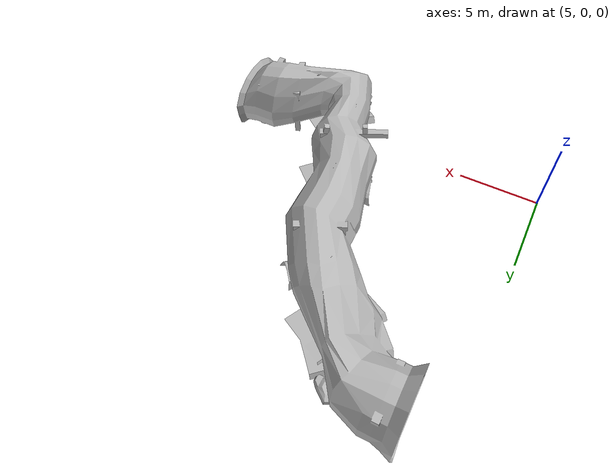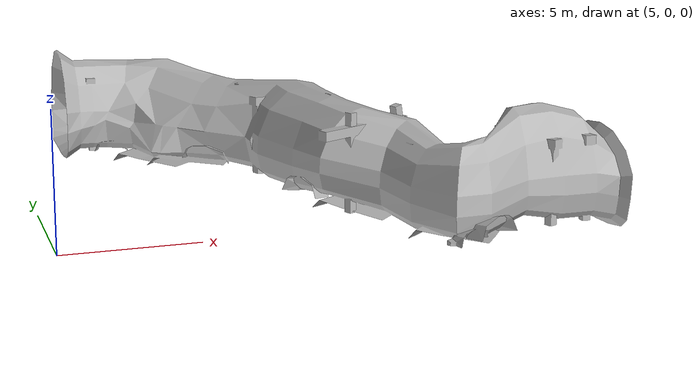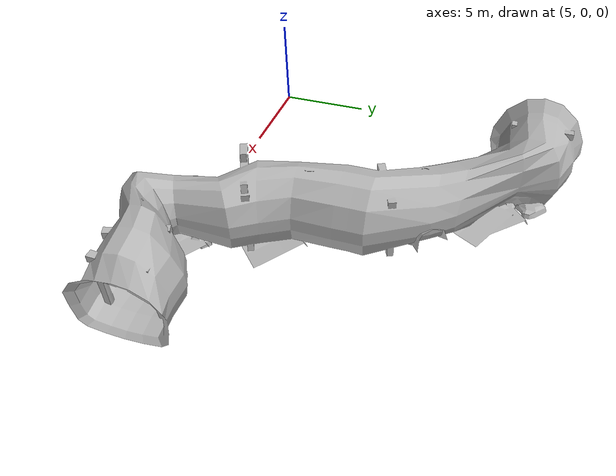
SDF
<?xml version="1.0" ?>
<sdf version="1.6">
  <model name="rocky_tunnel_1">
    <static>true</static>
    <link name="link">
      <collision name="collision">
        <geometry>
          <mesh>
            <uri>model://rocky_tunnel_1/meshes/rocky_tunnel_1.dae</uri>
            <scale>1.6 1.6 1.6</scale>
          </mesh>
        </geometry>
      </collision>
      <visual name="visual">
        <geometry>
          <mesh>
            <uri>model://rocky_tunnel_1/meshes/rocky_tunnel_1.dae</uri>
            <scale>1.6 1.6 1.6</scale>
          </mesh>
        </geometry>
      </visual>
    </link>
  </model>
</sdf>
